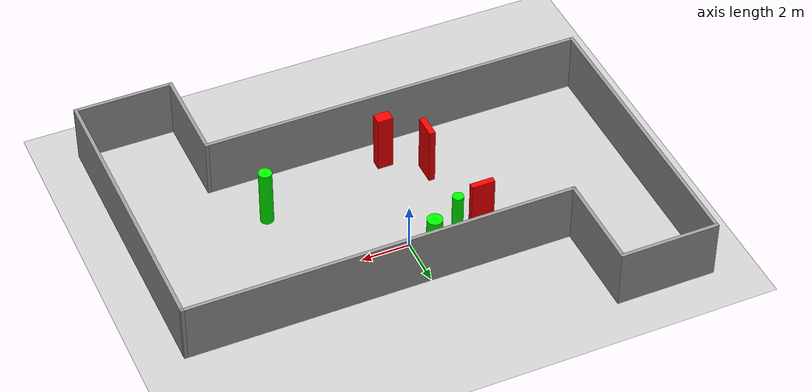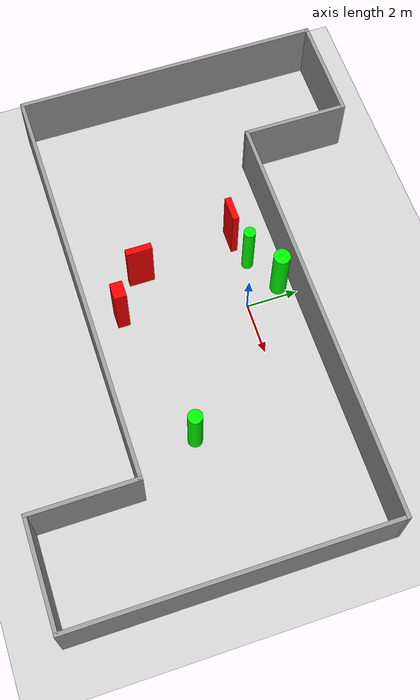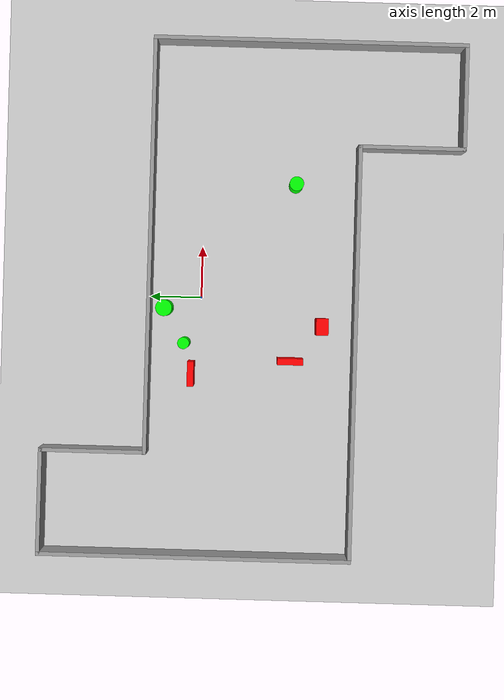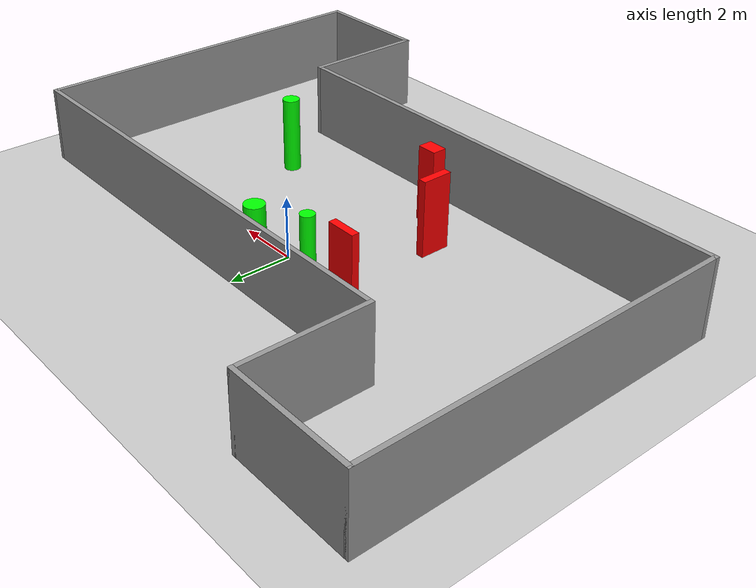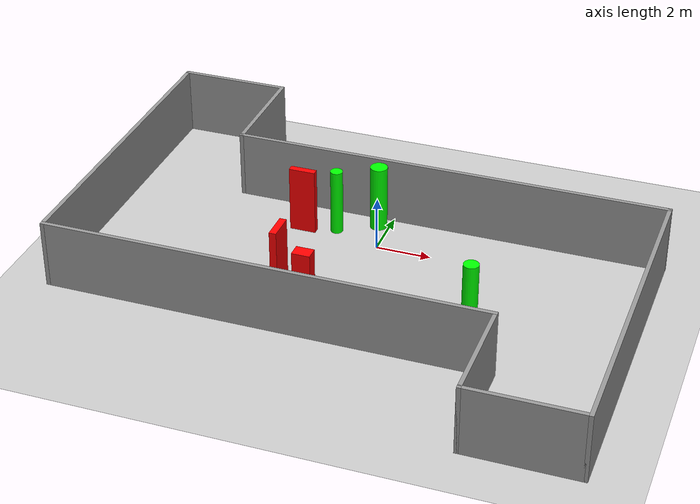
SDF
<sdf version="1.7">
 <world name="default">
  <light name="sun" type="directional">
   <pose>0 0 10 0 -0 0</pose>
   <diffuse>0.8 0.8 0.8 1</diffuse>
   <specular>0.2 0.2 0.2 1</specular>
   <attenuation>
    <range>1000</range>
    <constant>0.9</constant>
    <linear>0.01</linear>
    <quadratic>0.001</quadratic>
   </attenuation>
   <direction>-0.5 0.1 -0.9</direction>
   <spot><inner_angle>0</inner_angle><outer_angle>0</outer_angle><falloff>0</falloff></spot>
  </light>
  <model name="ground_plane">
   <static>1</static>
   <link name="link">
    <collision name="collision">
     <geometry><plane><normal>0 0 1</normal><size>100 100</size></plane></geometry>
     <surface>
      <contact><collide_bitmask>65535</collide_bitmask></contact>
      <friction><ode><mu>100</mu><mu2>50</mu2></ode></friction>
     </surface>
    </collision>
    <visual name="visual">
     <cast_shadows>0</cast_shadows>
     <geometry><plane><normal>0 0 1</normal><size>100 100</size></plane></geometry>
     <material>
      <script><uri>file://media/materials/scripts/gazebo.material</uri><name>Gazebo/Grey</name></script>
     </material>
    </visual>
   </link>
  </model>
  <gravity>0 0 -9.8</gravity>
  <magnetic_field>6e-06 2.3e-05 -4.2e-05</magnetic_field>
  <atmosphere type="adiabatic"/>
  <physics type="ode">
   <max_step_size>0.001</max_step_size>
   <real_time_factor>1</real_time_factor>
   <real_time_update_rate>1000</real_time_update_rate>
  </physics>
  <scene><ambient>0.4 0.4 0.4 1</ambient><background>0.7 0.7 0.7 1</background><shadows>1</shadows></scene>
  <spherical_coordinates>
   <surface_model>EARTH_WGS84</surface_model>
   <latitude_deg>0</latitude_deg>
   <longitude_deg>0</longitude_deg>
   <elevation>0</elevation>
   <heading_deg>0</heading_deg>
  </spherical_coordinates>
  <model name="my_base_walls">
   <link name="Wall_13">
    <collision name="Wall_13_Collision">
     <geometry><box><size>12.15 0.15 2.5</size></box></geometry>
     <pose>0 0 1.25 0 -0 0</pose>
    </collision>
    <visual name="Wall_13_Visual">
     <pose>0 0 1.25 0 -0 0</pose>
     <geometry><box><size>12.15 0.15 2.5</size></box></geometry>
     <material>
      <script><uri>file://media/materials/scripts/gazebo.material</uri><name>Gazebo/Grey</name></script>
      <ambient>1 1 1 1</ambient>
     </material>
     <meta><layer>0</layer></meta>
    </visual>
    <pose>10 -2 0 0 -0 1.5708</pose>
   </link>
   <link name="Wall_15">
    <collision name="Wall_15_Collision">
     <geometry><box><size>16.15 0.15 2.5</size></box></geometry>
     <pose>0 0 1.25 0 -0 0</pose>
    </collision>
    <visual name="Wall_15_Visual">
     <pose>0 0 1.25 0 -0 0</pose>
     <geometry><box><size>16.15 0.15 2.5</size></box></geometry>
     <material>
      <script><uri>file://media/materials/scripts/gazebo.material</uri><name>Gazebo/Grey</name></script>
      <ambient>1 1 1 1</ambient>
     </material>
     <meta><layer>0</layer></meta>
    </visual>
    <pose>2 4 0 0 -0 3.14159</pose>
   </link>
   <link name="Wall_17">
    <collision name="Wall_17_Collision">
     <geometry><box><size>4.15 0.15 2.5</size></box></geometry>
     <pose>0 0 1.25 0 -0 0</pose>
    </collision>
    <visual name="Wall_17_Visual">
     <pose>0 0 1.25 0 -0 0</pose>
     <geometry><box><size>4.15 0.15 2.5</size></box></geometry>
     <material>
      <script><uri>file://media/materials/scripts/gazebo.material</uri><name>Gazebo/Grey</name></script>
      <ambient>1 1 1 1</ambient>
     </material>
     <meta><layer>0</layer></meta>
    </visual>
    <pose>6 -6 0 0 -0 -1.5708</pose>
   </link>
   <link name="Wall_19">
    <collision name="Wall_19_Collision">
     <geometry><box><size>12.15 0.15 2.5</size></box></geometry>
     <pose>0 0 1.25 0 -0 0</pose>
    </collision>
    <visual name="Wall_19_Visual">
     <pose>0 0 1.25 0 -0 0</pose>
     <geometry><box><size>12.15 0.15 2.5</size></box></geometry>
     <material>
      <script><uri>file://media/materials/scripts/gazebo.material</uri><name>Gazebo/Grey</name></script>
      <ambient>1 1 1 1</ambient>
     </material>
     <meta><layer>0</layer></meta>
    </visual>
    <pose>-10 2 0 0 -0 1.5708</pose>
   </link>
   <link name="Wall_21">
    <collision name="Wall_21_Collision">
     <geometry><box><size>4.15 0.15 2.5</size></box></geometry>
     <pose>0 0 1.25 0 -0 0</pose>
    </collision>
    <visual name="Wall_21_Visual">
     <pose>0 0 1.25 0 -0 0</pose>
     <geometry><box><size>4.15 0.15 2.5</size></box></geometry>
     <material>
      <script><uri>file://media/materials/scripts/gazebo.material</uri><name>Gazebo/Grey</name></script>
      <ambient>1 1 1 1</ambient>
     </material>
     <meta><layer>0</layer></meta>
    </visual>
    <pose>-8 8 0 0 -0 0</pose>
   </link>
   <link name="Wall_23">
    <collision name="Wall_23_Collision">
     <geometry><box><size>4.15 0.15 2.5</size></box></geometry>
     <pose>0 0 1.25 0 -0 0</pose>
    </collision>
    <visual name="Wall_23_Visual">
     <pose>0 0 1.25 0 -0 0</pose>
     <geometry><box><size>4.15 0.15 2.5</size></box></geometry>
     <material>
      <script><uri>file://media/materials/scripts/gazebo.material</uri><name>Gazebo/Grey</name></script>
      <ambient>1 1 1 1</ambient>
     </material>
     <meta><layer>0</layer></meta>
    </visual>
    <pose>-6 6 0 0 -0 -1.5708</pose>
   </link>
   <link name="Wall_25">
    <collision name="Wall_25_Collision">
     <geometry><box><size>4.15 0.15 2.5</size></box></geometry>
     <pose>0 0 1.25 0 -0 0</pose>
    </collision>
    <visual name="Wall_25_Visual">
     <pose>0 0 1.25 0 -0 0</pose>
     <geometry><box><size>4.15 0.15 2.5</size></box></geometry>
     <material>
      <script><uri>file://media/materials/scripts/gazebo.material</uri><name>Gazebo/Grey</name></script>
      <ambient>1 1 1 1</ambient>
     </material>
     <meta><layer>0</layer></meta>
    </visual>
    <pose>8 -8 0 0 -0 0</pose>
   </link>
   <link name="Wall_9">
    <collision name="Wall_9_Collision">
     <geometry><box><size>16.15 0.15 2.5</size></box></geometry>
     <pose>0 0 1.25 0 -0 0</pose>
    </collision>
    <visual name="Wall_9_Visual">
     <pose>0 0 1.25 0 -0 0</pose>
     <geometry><box><size>16.15 0.15 2.5</size></box></geometry>
     <material>
      <script><uri>file://media/materials/scripts/gazebo.material</uri><name>Gazebo/Grey</name></script>
      <ambient>1 1 1 1</ambient>
     </material>
     <meta><layer>0</layer></meta>
    </visual>
    <pose>-2 -4 0 0 -0 3.14159</pose>
   </link>
   <static>1</static>
   <pose>-0 -2 0 0 -0 0</pose>
  </model>
  <model name="cylinder1">
   <static>1</static>
   <link name="link">
    <inertial>
     <mass>1</mass>
     <inertia><ixx>0.5</ixx><ixy>0</ixy><ixz>0</ixz><iyy>0.5</iyy><iyz>0</iyz><izz>1</izz></inertia>
    </inertial>
    <collision name="collision">
     <geometry><cylinder><radius>0.3188722177354353</radius><length>2.5</length></cylinder></geometry>
    </collision>
    <visual name="visual">
     <geometry><cylinder><radius>0.3188722177354353</radius><length>2.5</length></cylinder></geometry>
     <material>
      <ambient>0 1 0 1</ambient>
      <diffuse>0 1 0 1</diffuse>
      <specular>0.1 0.1 0.1 1</specular>
      <emissive>0 0 0 0</emissive>
     </material>
    </visual>
   </link>
   <pose>-0.41483616794818 1.405235907496981 1.25 0 0 0</pose>
  </model>
  <model name="cylinder2">
   <static>1</static>
   <link name="link">
    <inertial>
     <mass>1</mass>
     <inertia><ixx>0.5</ixx><ixy>0</ixy><ixz>0</ixz><iyy>0.5</iyy><iyz>0</iyz><izz>1</izz></inertia>
    </inertial>
    <collision name="collision">
     <geometry><cylinder><radius>0.22641167711050905</radius><length>2.5</length></cylinder></geometry>
    </collision>
    <visual name="visual">
     <geometry><cylinder><radius>0.22641167711050905</radius><length>2.5</length></cylinder></geometry>
     <material>
      <ambient>0 1 0 1</ambient>
      <diffuse>0 1 0 1</diffuse>
      <specular>0.1 0.1 0.1 1</specular>
      <emissive>0 0 0 0</emissive>
     </material>
    </visual>
   </link>
   <pose>-1.7545162467782234 0.6128380145560195 1.25 0 0 0</pose>
  </model>
  <model name="cylinder3">
   <static>1</static>
   <link name="link">
    <inertial>
     <mass>1</mass>
     <inertia><ixx>0.5</ixx><ixy>0</ixy><ixz>0</ixz><iyy>0.5</iyy><iyz>0</iyz><izz>1</izz></inertia>
    </inertial>
    <collision name="collision">
     <geometry><cylinder><radius>0.27540777335438926</radius><length>2.5</length></cylinder></geometry>
    </collision>
    <visual name="visual">
     <geometry><cylinder><radius>0.27540777335438926</radius><length>2.5</length></cylinder></geometry>
     <material>
      <ambient>0 1 0 1</ambient>
      <diffuse>0 1 0 1</diffuse>
      <specular>0.1 0.1 0.1 1</specular>
      <emissive>0 0 0 0</emissive>
     </material>
    </visual>
   </link>
   <pose>4.498523544557926 -3.5829873733045723 1.25 0 0 0</pose>
  </model>
  <model name="box1">
   <static>1</static>
   <link name="link">
    <inertial>
     <mass>1</mass>
     <inertia><ixx>0.083</ixx><ixy>0</ixy><ixz>0</ixz><iyy>0.083</iyy><iyz>0</iyz><izz>0.083</izz></inertia>
    </inertial>
    <collision name="collision">
     <geometry><box><size>0.9661896386438649 0.2474286138046265 2.5</size></box></geometry>
    </collision>
    <visual name="visual">
     <geometry><box><size>0.9661896386438649 0.2474286138046265 2.5</size></box></geometry>
     <material>
      <ambient>1 0 0 1</ambient>
      <diffuse>1 0 0 1</diffuse>
      <specular>0.1 0.1 0.1 1</specular>
      <emissive>0 0 0 0</emissive>
     </material>
    </visual>
    <sensor name="my_contact" type="contact">
     <contact><collision>box_collision</collision><topic>__default_topic__</topic></contact>
    </sensor>
   </link>
   <pose>-2.932868602850364 0.31325662134300103 1.25 0 0 0</pose>
  </model>
  <model name="box2">
   <static>1</static>
   <link name="link">
    <inertial>
     <mass>1</mass>
     <inertia><ixx>0.083</ixx><ixy>0</ixy><ixz>0</ixz><iyy>0.083</iyy><iyz>0</iyz><izz>0.083</izz></inertia>
    </inertial>
    <collision name="collision">
     <geometry><box><size>0.25437777191855954 0.9969247551038869 2.5</size></box></geometry>
    </collision>
    <visual name="visual">
     <geometry><box><size>0.25437777191855954 0.9969247551038869 2.5</size></box></geometry>
     <material>
      <ambient>1 0 0 1</ambient>
      <diffuse>1 0 0 1</diffuse>
      <specular>0.1 0.1 0.1 1</specular>
      <emissive>0 0 0 0</emissive>
     </material>
    </visual>
    <sensor name="my_contact" type="contact">
     <contact><collision>box_collision</collision><topic>__default_topic__</topic></contact>
    </sensor>
   </link>
   <pose>-2.3605148006253245 -3.52660716487269 1.25 0 0 0</pose>
  </model>
  <model name="box3">
   <static>1</static>
   <link name="link">
    <inertial>
     <mass>1</mass>
     <inertia><ixx>0.083</ixx><ixy>0</ixy><ixz>0</ixz><iyy>0.083</iyy><iyz>0</iyz><izz>0.083</izz></inertia>
    </inertial>
    <collision name="collision">
     <geometry><box><size>0.6475034221053134 0.47449609994265174 2.5</size></box></geometry>
    </collision>
    <visual name="visual">
     <geometry><box><size>0.6475034221053134 0.47449609994265174 2.5</size></box></geometry>
     <material>
      <ambient>1 0 0 1</ambient>
      <diffuse>1 0 0 1</diffuse>
      <specular>0.1 0.1 0.1 1</specular>
      <emissive>0 0 0 0</emissive>
     </material>
    </visual>
    <sensor name="my_contact" type="contact">
     <contact><collision>box_collision</collision><topic>__default_topic__</topic></contact>
    </sensor>
   </link>
   <pose>-0.9855581856039333 -4.72154388748932 1.25 0 0 0</pose>
  </model>
 </world>
</sdf>
